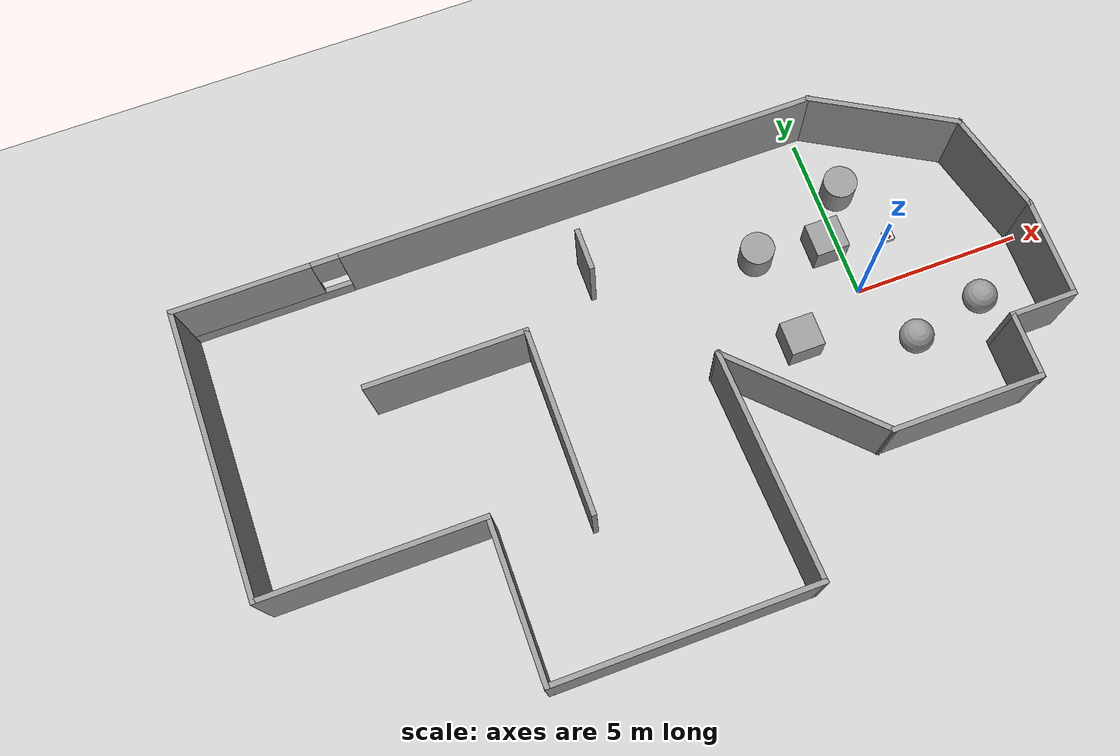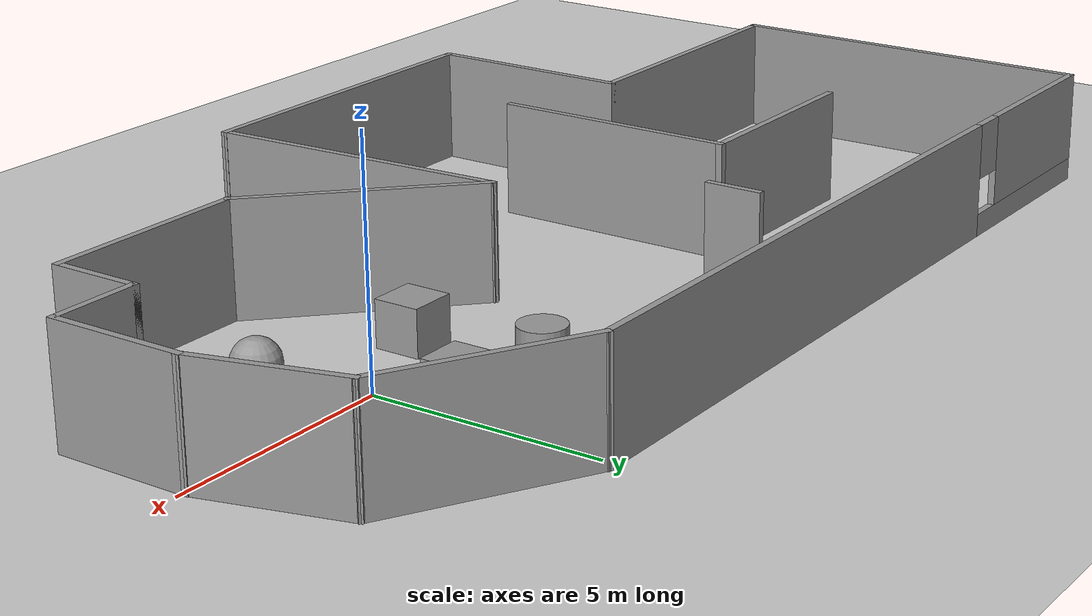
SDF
<sdf version="1.7">
 <world name="default">
  <light name="sun" type="directional">
   <pose>0 0 10 0 -0 0</pose>
   <diffuse>0.8 0.8 0.8 1</diffuse>
   <specular>0.2 0.2 0.2 1</specular>
   <attenuation>
    <range>1000</range>
    <constant>0.9</constant>
    <linear>0.01</linear>
    <quadratic>0.001</quadratic>
   </attenuation>
   <direction>-0.5 0.1 -0.9</direction>
   <spot><inner_angle>0</inner_angle><outer_angle>0</outer_angle><falloff>0</falloff></spot>
  </light>
  <model name="ground_plane">
   <static>1</static>
   <link name="link">
    <collision name="collision">
     <geometry><plane><normal>0 0 1</normal><size>100 100</size></plane></geometry>
     <surface>
      <contact><collide_bitmask>65535</collide_bitmask></contact>
      <friction><ode><mu>100</mu><mu2>50</mu2></ode></friction>
     </surface>
    </collision>
    <visual name="visual">
     <cast_shadows>0</cast_shadows>
     <geometry><plane><normal>0 0 1</normal><size>100 100</size></plane></geometry>
     <material>
      <script><uri>file://media/materials/scripts/gazebo.material</uri><name>Gazebo/Grey</name></script>
     </material>
    </visual>
   </link>
  </model>
  <gravity>0 0 -9.8</gravity>
  <magnetic_field>6e-06 2.3e-05 -4.2e-05</magnetic_field>
  <atmosphere type="adiabatic"/>
  <physics type="ode">
   <max_step_size>0.001</max_step_size>
   <real_time_factor>1</real_time_factor>
   <real_time_update_rate>1000</real_time_update_rate>
  </physics>
  <scene><ambient>0.4 0.4 0.4 1</ambient><background>0.7 0.7 0.7 1</background><shadows>1</shadows></scene>
  <audio><device>default</device></audio>
  <spherical_coordinates>
   <surface_model>EARTH_WGS84</surface_model>
   <latitude_deg>0</latitude_deg>
   <longitude_deg>0</longitude_deg>
   <elevation>0</elevation>
   <heading_deg>0</heading_deg>
  </spherical_coordinates>
  <model name="my_bot">
   <link name="base_link">
    <inertial>
     <pose>0.055714 0 0.078571 0 -0 0</pose>
     <mass>0.7</mass>
     <inertia>
      <ixx>0.0064169</ixx>
      <ixy>0</ixy>
      <ixz>0.00118929</ixz>
      <iyy>0.00745405</iyy>
      <iyz>0</iyz>
      <izz>0.00876214</izz>
     </inertia>
    </inertial>
    <collision name="base_link_fixed_joint_lump__chassis_collision">
     <pose>0.05 0 0.075 0 -0 0</pose>
     <geometry><box><size>0.3 0.3 0.15</size></box></geometry>
    </collision>
    <collision name="base_link_fixed_joint_lump__caster_wheel_collision_1">
     <pose>0.14 0 0 0 -0 0</pose>
     <geometry><sphere><radius>0.05</radius></sphere></geometry>
     <surface><friction><ode><mu>0.001</mu><mu2>0.001</mu2></ode></friction></surface>
    </collision>
    <collision name="base_link_fixed_joint_lump__laser_frame_collision_2">
     <pose>0 0 0.175 0 -0 0</pose>
     <geometry><cylinder><length>0.04</length><radius>0.05</radius></cylinder></geometry>
    </collision>
    <visual name="base_link_fixed_joint_lump__chassis_visual">
     <pose>0.05 0 0.075 0 -0 0</pose>
     <geometry><box><size>0.3 0.3 0.15</size></box></geometry>
     <material>
      <script><name>Gazebo/White</name><uri>file://media/materials/scripts/gazebo.material</uri></script>
     </material>
    </visual>
    <visual name="base_link_fixed_joint_lump__caster_wheel_visual_1">
     <pose>0.14 0 0 0 -0 0</pose>
     <geometry><sphere><radius>0.05</radius></sphere></geometry>
     <material>
      <script><name>Gazebo/Black</name><uri>file://media/materials/scripts/gazebo.material</uri></script>
     </material>
    </visual>
    <visual name="base_link_fixed_joint_lump__laser_frame_visual_2">
     <pose>0 0 0.175 0 -0 0</pose>
     <geometry><cylinder><length>0.04</length><radius>0.05</radius></cylinder></geometry>
     <material>
      <script><name>Gazebo/Red</name><uri>file://media/materials/scripts/gazebo.material</uri></script>
     </material>
    </visual>
    <sensor name="laser" type="ray">
     <visualize>1</visualize>
     <update_rate>10</update_rate>
     <ray>
      <scan>
       <horizontal>
        <samples>360</samples>
        <resolution>1</resolution>
        <min_angle>-3.14</min_angle>
        <max_angle>3.14</max_angle>
       </horizontal>
       <vertical><samples>1</samples><min_angle>0</min_angle><max_angle>0</max_angle></vertical>
      </scan>
      <range><min>0.3</min><max>12</max></range>
     </ray>
     <plugin name="laser_controller" filename="libgazebo_ros_ray_sensor.so">
      <ros><argument>~/out:=scan</argument></ros>
      <output_type>sensor_msgs/LaserScan</output_type>
      <frame_name>laser_frame</frame_name>
     </plugin>
     <pose>0 0 0.175 0 -0 0</pose>
    </sensor>
   </link>
   <joint name="left_wheel_joint" type="revolute">
    <pose relative_to="base_link">0 0.175 0 -1.5708 0 0</pose>
    <parent>base_link</parent>
    <child>left_wheel</child>
    <axis>
     <xyz>0 0 1</xyz>
     <limit><lower>-1e+16</lower><upper>1e+16</upper></limit>
     <dynamics><spring_reference>0</spring_reference><spring_stiffness>0</spring_stiffness></dynamics>
    </axis>
   </joint>
   <link name="left_wheel">
    <pose relative_to="left_wheel_joint">0 0 0 0 -0 0</pose>
    <inertial>
     <mass>0.1</mass>
     <inertia>
      <ixx>7.58333e-05</ixx>
      <ixy>0</ixy>
      <ixz>0</ixz>
      <iyy>7.58333e-05</iyy>
      <iyz>0</iyz>
      <izz>0.000125</izz>
     </inertia>
    </inertial>
    <collision name="left_wheel_collision">
     <geometry><cylinder><length>0.04</length><radius>0.05</radius></cylinder></geometry>
    </collision>
    <visual name="left_wheel_visual">
     <geometry><cylinder><length>0.04</length><radius>0.05</radius></cylinder></geometry>
     <material>
      <script><name>Gazebo/Blue</name><uri>file://media/materials/scripts/gazebo.material</uri></script>
     </material>
    </visual>
   </link>
   <joint name="right_wheel_joint" type="revolute">
    <pose relative_to="base_link">0 -0.175 0 1.5708 -0 0</pose>
    <parent>base_link</parent>
    <child>right_wheel</child>
    <axis>
     <xyz>0 0 -1</xyz>
     <limit><lower>-1e+16</lower><upper>1e+16</upper></limit>
     <dynamics><spring_reference>0</spring_reference><spring_stiffness>0</spring_stiffness></dynamics>
    </axis>
   </joint>
   <link name="right_wheel">
    <pose relative_to="right_wheel_joint">0 0 0 0 -0 0</pose>
    <inertial>
     <mass>0.1</mass>
     <inertia>
      <ixx>7.58333e-05</ixx>
      <ixy>0</ixy>
      <ixz>0</ixz>
      <iyy>7.58333e-05</iyy>
      <iyz>0</iyz>
      <izz>0.000125</izz>
     </inertia>
    </inertial>
    <collision name="right_wheel_collision">
     <geometry><cylinder><length>0.04</length><radius>0.05</radius></cylinder></geometry>
    </collision>
    <visual name="right_wheel_visual">
     <geometry><cylinder><length>0.04</length><radius>0.05</radius></cylinder></geometry>
     <material>
      <script><name>Gazebo/Blue</name><uri>file://media/materials/scripts/gazebo.material</uri></script>
     </material>
    </visual>
   </link>
   <static>0</static>
   <plugin name="diff_drive" filename="libgazebo_ros_diff_drive.so">
    <left_joint>left_wheel_joint</left_joint>
    <right_joint>right_wheel_joint</right_joint>
    <wheel_separation>0.35</wheel_separation>
    <wheel_diameter>0.1</wheel_diameter>
    <max_wheel_torque>200</max_wheel_torque>
    <max_wheel_acceleration>10.0</max_wheel_acceleration>
    <odometry_frame>odom</odometry_frame>
    <robot_base_frame>base_link</robot_base_frame>
    <publish_odom>1</publish_odom>
    <publish_odom_tf>1</publish_odom_tf>
    <publish_wheel_tf>1</publish_wheel_tf>
   </plugin>
   <pose>1.47014 1.243 0.049995 -2.8e-05 -4e-06 1.55188</pose>
  </model>
  <model name="unit_box">
   <pose>-2.28488 -0.879469 0.499995 -1e-05 -0 -0</pose>
   <link name="link">
    <inertial>
     <mass>1</mass>
     <inertia>
      <ixx>0.166667</ixx>
      <ixy>0</ixy>
      <ixz>0</ixz>
      <iyy>0.166667</iyy>
      <iyz>0</iyz>
      <izz>0.166667</izz>
     </inertia>
    </inertial>
    <collision name="collision"><geometry><box><size>1 1 1</size></box></geometry></collision>
    <visual name="visual">
     <geometry><box><size>1 1 1</size></box></geometry>
     <material>
      <script><name>Gazebo/Grey</name><uri>file://media/materials/scripts/gazebo.material</uri></script>
     </material>
    </visual>
   </link>
  </model>
  <model name="unit_cylinder">
   <pose>-2.50022 1.97789 0.499998 3e-06 4e-06 -0</pose>
   <link name="link">
    <inertial>
     <mass>1</mass>
     <inertia><ixx>0.145833</ixx><ixy>0</ixy><ixz>0</ixz><iyy>0.145833</iyy><iyz>0</iyz><izz>0.125</izz></inertia>
    </inertial>
    <collision name="collision">
     <geometry><cylinder><radius>0.5</radius><length>1</length></cylinder></geometry>
    </collision>
    <visual name="visual">
     <geometry><cylinder><radius>0.5</radius><length>1</length></cylinder></geometry>
     <material>
      <script><name>Gazebo/Grey</name><uri>file://media/materials/scripts/gazebo.material</uri></script>
     </material>
    </visual>
   </link>
  </model>
  <model name="unit_sphere">
   <pose>0.886986 -1.94787 0.5 0 -0 0</pose>
   <link name="link">
    <inertial>
     <mass>1</mass>
     <inertia><ixx>0.1</ixx><ixy>0</ixy><ixz>0</ixz><iyy>0.1</iyy><iyz>0</iyz><izz>0.1</izz></inertia>
    </inertial>
    <collision name="collision"><geometry><sphere><radius>0.5</radius></sphere></geometry></collision>
    <visual name="visual">
     <geometry><sphere><radius>0.5</radius></sphere></geometry>
     <material>
      <script><name>Gazebo/Grey</name><uri>file://media/materials/scripts/gazebo.material</uri></script>
     </material>
    </visual>
   </link>
  </model>
  <model name="unit_cylinder_0">
   <pose>0.562779 3.0864 0.499997 3e-06 4e-06 -0</pose>
   <link name="link">
    <inertial>
     <mass>1</mass>
     <inertia><ixx>0.145833</ixx><ixy>0</ixy><ixz>0</ixz><iyy>0.145833</iyy><iyz>0</iyz><izz>0.125</izz></inertia>
    </inertial>
    <collision name="collision">
     <geometry><cylinder><radius>0.5</radius><length>1</length></cylinder></geometry>
    </collision>
    <visual name="visual">
     <geometry><cylinder><radius>0.5</radius><length>1</length></cylinder></geometry>
     <material>
      <script><name>Gazebo/Grey</name><uri>file://media/materials/scripts/gazebo.material</uri></script>
     </material>
    </visual>
   </link>
  </model>
  <model name="unit_sphere_0">
   <pose>3.10281 -1.47077 0.5 0 -0 0</pose>
   <link name="link">
    <inertial>
     <mass>1</mass>
     <inertia><ixx>0.1</ixx><ixy>0</ixy><ixz>0</ixz><iyy>0.1</iyy><iyz>0</iyz><izz>0.1</izz></inertia>
    </inertial>
    <collision name="collision"><geometry><sphere><radius>0.5</radius></sphere></geometry></collision>
    <visual name="visual">
     <geometry><sphere><radius>0.5</radius></sphere></geometry>
     <material>
      <script><name>Gazebo/Grey</name><uri>file://media/materials/scripts/gazebo.material</uri></script>
     </material>
    </visual>
   </link>
  </model>
  <model name="unit_box_0">
   <pose>-0.462331 1.64917 0.5 0 -0 0</pose>
   <link name="link">
    <inertial>
     <mass>1</mass>
     <inertia>
      <ixx>0.166667</ixx>
      <ixy>0</ixy>
      <ixz>0</ixz>
      <iyy>0.166667</iyy>
      <iyz>0</iyz>
      <izz>0.166667</izz>
     </inertia>
    </inertial>
    <collision name="collision"><geometry><box><size>1 1 1</size></box></geometry></collision>
    <visual name="visual">
     <geometry><box><size>1 1 1</size></box></geometry>
     <material>
      <script><name>Gazebo/Grey</name><uri>file://media/materials/scripts/gazebo.material</uri></script>
     </material>
    </visual>
   </link>
  </model>
  <model name="outer_wall">
   <pose>-6.89914 -1.20558 0 0 -0 0</pose>
   <link name="Wall_1">
    <collision name="Wall_1_Collision">
     <geometry><box><size>5.25 0.15 2.5</size></box></geometry>
     <pose>0 0 1.25 0 -0 0</pose>
    </collision>
    <visual name="Wall_1_Visual">
     <pose>0 0 1.25 0 -0 0</pose>
     <geometry><box><size>5.25 0.15 2.5</size></box></geometry>
     <material>
      <script><uri>file://media/materials/scripts/gazebo.material</uri><name>Gazebo/Grey</name></script>
      <ambient>1 1 1 1</ambient>
     </material>
     <meta><layer>0</layer></meta>
    </visual>
    <pose>3.69822 -1.60314 0 0 -0 -0.785398</pose>
   </link>
   <link name="Wall_10">
    <pose>-2.2932 6.46311 0 0 -0 3.14159</pose>
    <visual name="Wall_10_Visual_0">
     <pose>-2.42884 0 1.25 0 -0 0</pose>
     <geometry><box><size>14.1423 0.15 2.5</size></box></geometry>
     <material>
      <script><uri>file://media/materials/scripts/gazebo.material</uri><name>Gazebo/Grey</name></script>
      <ambient>1 1 1 1</ambient>
     </material>
     <meta><layer>0</layer></meta>
    </visual>
    <collision name="Wall_10_Collision_0">
     <geometry><box><size>14.1423 0.15 2.5</size></box></geometry>
     <pose>-2.42884 0 1.25 0 -0 0</pose>
    </collision>
    <visual name="Wall_10_Visual_1">
     <pose>7.07116 0 0.25 0 -0 0</pose>
     <geometry><box><size>4.85768 0.15 0.5</size></box></geometry>
     <material>
      <script><uri>file://media/materials/scripts/gazebo.material</uri><name>Gazebo/Grey</name></script>
      <ambient>1 1 1 1</ambient>
     </material>
     <meta><layer>0</layer></meta>
    </visual>
    <collision name="Wall_10_Collision_1">
     <geometry><box><size>4.85768 0.15 0.5</size></box></geometry>
     <pose>7.07116 0 0.25 0 -0 0</pose>
    </collision>
    <visual name="Wall_10_Visual_2">
     <pose>7.47116 0 1.5 0 -0 0</pose>
     <geometry><box><size>4.05768 0.15 2</size></box></geometry>
     <material>
      <script><uri>file://media/materials/scripts/gazebo.material</uri><name>Gazebo/Grey</name></script>
      <ambient>1 1 1 1</ambient>
     </material>
     <meta><layer>0</layer></meta>
    </visual>
    <collision name="Wall_10_Collision_2">
     <geometry><box><size>4.05768 0.15 2</size></box></geometry>
     <pose>7.47116 0 1.5 0 -0 0</pose>
    </collision>
    <visual name="Wall_10_Visual_3">
     <pose>5.04232 0 1.9 0 -0 0</pose>
     <geometry><box><size>0.8 0.15 1.2</size></box></geometry>
     <material>
      <script><uri>file://media/materials/scripts/gazebo.material</uri><name>Gazebo/Grey</name></script>
      <ambient>1 1 1 1</ambient>
     </material>
     <meta><layer>0</layer></meta>
    </visual>
    <collision name="Wall_10_Collision_3">
     <geometry><box><size>0.8 0.15 1.2</size></box></geometry>
     <pose>5.04232 0 1.9 0 -0 0</pose>
    </collision>
   </link>
   <link name="Wall_11">
    <collision name="Wall_11_Collision">
     <geometry><box><size>8.5 0.15 2.5</size></box></geometry>
     <pose>0 0 1.25 0 -0 0</pose>
    </collision>
    <visual name="Wall_11_Visual">
     <pose>0 0 1.25 0 -0 0</pose>
     <geometry><box><size>8.5 0.15 2.5</size></box></geometry>
     <material>
      <script><uri>file://media/materials/scripts/gazebo.material</uri><name>Gazebo/Grey</name></script>
      <ambient>1 1 1 1</ambient>
     </material>
     <meta><layer>0</layer></meta>
    </visual>
    <pose>-11.7182 2.28811 0 0 -0 -1.5708</pose>
   </link>
   <link name="Wall_12">
    <collision name="Wall_12_Collision">
     <geometry><box><size>6.5 0.15 2.5</size></box></geometry>
     <pose>0 0 1.25 0 -0 0</pose>
    </collision>
    <visual name="Wall_12_Visual">
     <pose>0 0 1.25 0 -0 0</pose>
     <geometry><box><size>6.5 0.15 2.5</size></box></geometry>
     <material>
      <script><uri>file://media/materials/scripts/gazebo.material</uri><name>Gazebo/Grey</name></script>
      <ambient>1 1 1 1</ambient>
     </material>
     <meta><layer>0</layer></meta>
    </visual>
    <pose>-8.5432 -1.88689 0 0 -0 0</pose>
   </link>
   <link name="Wall_13">
    <collision name="Wall_13_Collision">
     <geometry><box><size>4.75 0.15 2.5</size></box></geometry>
     <pose>0 0 1.25 0 -0 0</pose>
    </collision>
    <visual name="Wall_13_Visual">
     <pose>0 0 1.25 0 -0 0</pose>
     <geometry><box><size>4.75 0.15 2.5</size></box></geometry>
     <material>
      <script><uri>file://media/materials/scripts/gazebo.material</uri><name>Gazebo/Grey</name></script>
      <ambient>1 1 1 1</ambient>
     </material>
     <meta><layer>0</layer></meta>
    </visual>
    <pose>-5.3682 -4.18689 0 0 -0 -1.5708</pose>
   </link>
   <link name="Wall_14">
    <collision name="Wall_14_Collision">
     <geometry><box><size>7.75 0.15 2.5</size></box></geometry>
     <pose>0 0 1.25 0 -0 0</pose>
    </collision>
    <visual name="Wall_14_Visual">
     <pose>0 0 1.25 0 -0 0</pose>
     <geometry><box><size>7.75 0.15 2.5</size></box></geometry>
     <material>
      <script><uri>file://media/materials/scripts/gazebo.material</uri><name>Gazebo/Grey</name></script>
      <ambient>1 1 1 1</ambient>
     </material>
     <meta><layer>0</layer></meta>
    </visual>
    <pose>-1.5682 -6.48689 0 0 -0 0</pose>
   </link>
   <link name="Wall_15">
    <collision name="Wall_15_Collision">
     <geometry><box><size>6.84535 0.15 2.5</size></box></geometry>
     <pose>0 0 1.25 0 -0 0</pose>
    </collision>
    <visual name="Wall_15_Visual">
     <pose>0 0 1.25 0 -0 0</pose>
     <geometry><box><size>6.84535 0.15 2.5</size></box></geometry>
     <material>
      <script><uri>file://media/materials/scripts/gazebo.material</uri><name>Gazebo/Grey</name></script>
      <ambient>1 1 1 1</ambient>
     </material>
     <meta><layer>0</layer></meta>
    </visual>
    <pose>2.06345 -3.14345 0 0 -0 1.62111</pose>
   </link>
   <link name="Wall_2">
    <collision name="Wall_2_Collision">
     <geometry><box><size>4.5 0.15 2.5</size></box></geometry>
     <pose>0 0 1.25 0 -0 0</pose>
    </collision>
    <visual name="Wall_2_Visual">
     <pose>0 0 1.25 0 -0 0</pose>
     <geometry><box><size>4.5 0.15 2.5</size></box></geometry>
     <material>
      <script><uri>file://media/materials/scripts/gazebo.material</uri><name>Gazebo/Grey</name></script>
      <ambient>1 1 1 1</ambient>
     </material>
     <meta><layer>0</layer></meta>
    </visual>
    <pose>7.67635 -3.40626 0 0 -0 0</pose>
   </link>
   <link name="Wall_3">
    <collision name="Wall_3_Collision">
     <geometry><box><size>2 0.15 2.5</size></box></geometry>
     <pose>0 0 1.25 0 -0 0</pose>
    </collision>
    <visual name="Wall_3_Visual">
     <pose>0 0 1.25 0 -0 0</pose>
     <geometry><box><size>2 0.15 2.5</size></box></geometry>
     <material>
      <script><uri>file://media/materials/scripts/gazebo.material</uri><name>Gazebo/Grey</name></script>
      <ambient>1 1 1 1</ambient>
     </material>
     <meta><layer>0</layer></meta>
    </visual>
    <pose>9.85135 -2.48126 0 0 -0 1.5708</pose>
   </link>
   <link name="Wall_4">
    <collision name="Wall_4_Collision">
     <geometry><box><size>2 0.15 2.5</size></box></geometry>
     <pose>0 0 1.25 0 -0 0</pose>
    </collision>
    <visual name="Wall_4_Visual">
     <pose>0 0 1.25 0 -0 0</pose>
     <geometry><box><size>2 0.15 2.5</size></box></geometry>
     <material>
      <script><uri>file://media/materials/scripts/gazebo.material</uri><name>Gazebo/Grey</name></script>
      <ambient>1 1 1 1</ambient>
     </material>
     <meta><layer>0</layer></meta>
    </visual>
    <pose>10.7763 -1.55626 0 0 -0 0</pose>
   </link>
   <link name="Wall_5">
    <collision name="Wall_5_Collision">
     <geometry><box><size>3 0.15 2.5</size></box></geometry>
     <pose>0 0 1.25 0 -0 0</pose>
    </collision>
    <visual name="Wall_5_Visual">
     <pose>0 0 1.25 0 -0 0</pose>
     <geometry><box><size>3 0.15 2.5</size></box></geometry>
     <material>
      <script><uri>file://media/materials/scripts/gazebo.material</uri><name>Gazebo/Grey</name></script>
      <ambient>1 1 1 1</ambient>
     </material>
     <meta><layer>0</layer></meta>
    </visual>
    <pose>11.7013 -0.131258 0 0 -0 1.5708</pose>
   </link>
   <link name="Wall_7">
    <collision name="Wall_7_Collision">
     <geometry><box><size>3.25 0.15 2.5</size></box></geometry>
     <pose>0 0 1.25 0 -0 0</pose>
    </collision>
    <visual name="Wall_7_Visual">
     <pose>0 0 1.25 0 -0 0</pose>
     <geometry><box><size>3.25 0.15 2.5</size></box></geometry>
     <material>
      <script><uri>file://media/materials/scripts/gazebo.material</uri><name>Gazebo/Grey</name></script>
      <ambient>1 1 1 1</ambient>
     </material>
     <meta><layer>0</layer></meta>
    </visual>
    <pose>11.3002 2.79093 0 0 -0 1.8326</pose>
   </link>
   <link name="Wall_9">
    <collision name="Wall_9_Collision">
     <geometry><box><size>4.5 0.15 2.5</size></box></geometry>
     <pose>0 0 1.25 0 -0 0</pose>
    </collision>
    <visual name="Wall_9_Visual">
     <pose>0 0 1.25 0 -0 0</pose>
     <geometry><box><size>4.5 0.15 2.5</size></box></geometry>
     <material>
      <script><uri>file://media/materials/scripts/gazebo.material</uri><name>Gazebo/Grey</name></script>
      <ambient>1 1 1 1</ambient>
     </material>
     <meta><layer>0</layer></meta>
    </visual>
    <pose>9.0154 5.37561 0 0 -0 2.61799</pose>
   </link>
   <static>1</static>
  </model>
  <model name="Untitled">
   <pose>-7.16821 -0.153213 0 0 -0 0</pose>
   <link name="Wall_18">
    <collision name="Wall_18_Collision">
     <geometry><box><size>5.5 0.15 2.5</size></box></geometry>
     <pose>0 0 1.25 0 -0 0</pose>
    </collision>
    <visual name="Wall_18_Visual">
     <pose>0 0 1.25 0 -0 0</pose>
     <geometry><box><size>5.5 0.15 2.5</size></box></geometry>
     <material>
      <script><uri>file://media/materials/scripts/gazebo.material</uri><name>Gazebo/Grey</name></script>
      <ambient>1 1 1 1</ambient>
     </material>
     <meta><layer>0</layer></meta>
    </visual>
    <pose>-2.49321 -1.12431 0 0 -0 1.5708</pose>
   </link>
   <link name="Wall_19">
    <collision name="Wall_19_Collision">
     <geometry><box><size>4.75 0.15 2.5</size></box></geometry>
     <pose>0 0 1.25 0 -0 0</pose>
    </collision>
    <visual name="Wall_19_Visual">
     <pose>0 0 1.25 0 -0 0</pose>
     <geometry><box><size>4.75 0.15 2.5</size></box></geometry>
     <material>
      <script><uri>file://media/materials/scripts/gazebo.material</uri><name>Gazebo/Grey</name></script>
      <ambient>1 1 1 1</ambient>
     </material>
     <meta><layer>0</layer></meta>
    </visual>
    <pose>-4.79321 1.55069 0 0 -0 3.14159</pose>
   </link>
   <link name="Wall_24">
    <collision name="Wall_24_Collision">
     <geometry><box><size>1.25 0.15 2.5</size></box></geometry>
     <pose>0 0 1.25 0 -0 0</pose>
    </collision>
    <visual name="Wall_24_Visual">
     <pose>0 0 1.25 0 -0 0</pose>
     <geometry><box><size>1.25 0.15 2.5</size></box></geometry>
     <material>
      <script><uri>file://media/materials/scripts/gazebo.material</uri><name>Gazebo/Grey</name></script>
      <ambient>1 1 1 1</ambient>
     </material>
     <meta><layer>0</layer></meta>
    </visual>
    <pose>-0.206594 3.24931 0 0 -0 -1.5708</pose>
   </link>
   <static>1</static>
  </model>
 </world>
</sdf>
